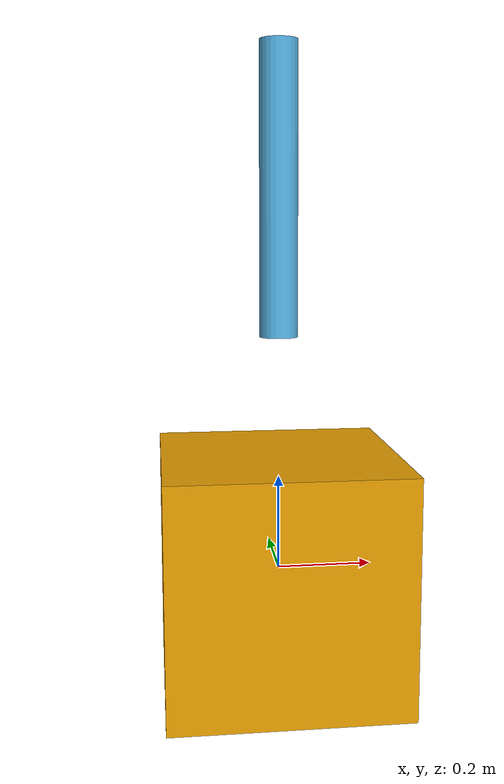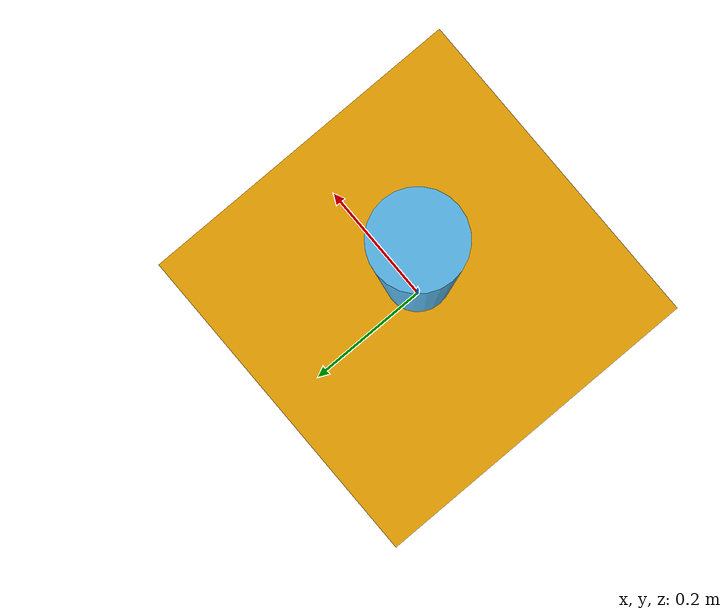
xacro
<?xml version="1.0"?>
    <robot name="myfirst" xmlns:xacro="http://www.ros.org/wiki/xacro">
      <link name="base_link">
        <visual>
          <geometry>
            <box size="0.5 0.5 0.5"/>
          </geometry>
        </visual>
      </link>

    <joint name="joint1" type="revolute">
     <axis xyz="0 1 0"/>
    <limit effort="1000.0" lower="-0.548" upper="0.548" velocity="0.5"/>
        <parent link="base_link"/>
        <child link="arm2"/>
        <origin xyz="0 0 0.5" rpy="0 0 0" />
      </joint>

    <link name="arm2">

        <visual>
	<origin xyz="0 0 0.3" rpy="0 0 0" />
          <geometry>
            <cylinder length="0.6" radius="0.04"/>
          </geometry>
        </visual>
      </link>
</robot>
